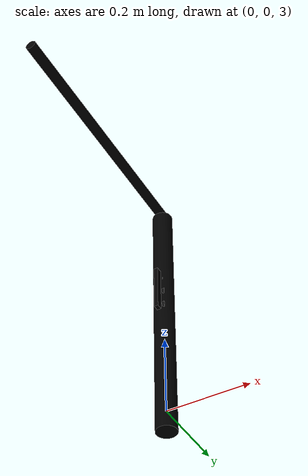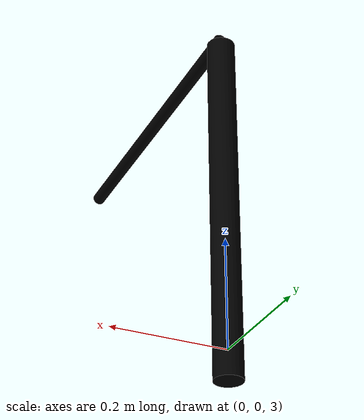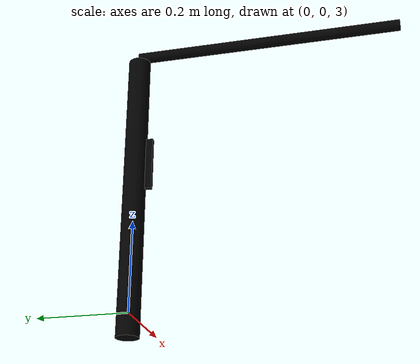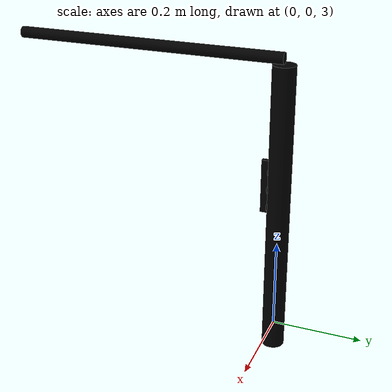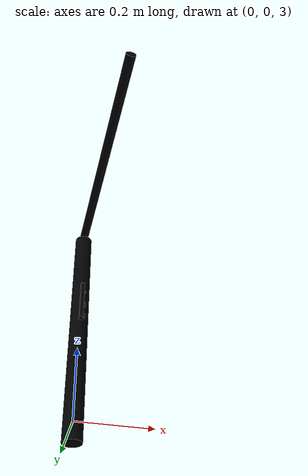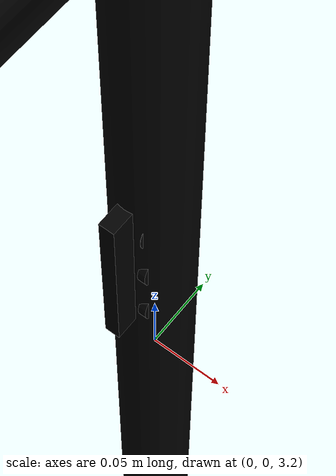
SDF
<?xml version="1.0"?>
<sdf version="1.7">
  <model name="cantilevered_light">
    <static>false</static>

    <link name="base">
      <gravity>false</gravity>
      <pose>0 0 0 0 0 0</pose>
      <visual name="visual">
        <pose>0 0 3.275 0 0 0</pose>
        <geometry>
          <cylinder>
            <radius>0.025</radius>
            <length>0.655</length>
          </cylinder>
        </geometry>
        <material>
          <ambient>0 0 0 1</ambient>
          <diffuse>0 0 0 1</diffuse>
          <specular>0 0 0 1</specular>
        </material>
      </visual>
      <collision name="collision">
        <pose>0 0 3.275 0 0 0</pose>
        <geometry>
          <cylinder>
            <radius>0.025</radius>
            <length>0.655</length>
          </cylinder>
        </geometry>
      </collision>
    </link>

    <link name="cross_beam">
      <gravity>false</gravity>
      <pose>0 2.7 3.615 1.5707 0 0</pose>
      <visual name="visual">
        <pose>0 0 3.0 0 0 0</pose>
        <geometry>
          <cylinder>
            <radius>0.0125</radius>
            <length>0.6</length>
          </cylinder>
        </geometry>
        <material>
          <ambient>0 0 0 1</ambient>
          <diffuse>0 0 0 1</diffuse>
          <specular>0 0 0 1</specular>
        </material>
      </visual>
      <collision name="collision">
        <pose>0 0 3.0 0 0 0</pose>
        <geometry>
          <cylinder>
            <radius>0.0125</radius>
            <length>0.6</length>
          </cylinder>
        </geometry>
      </collision>
    </link>

    <frame name="base_frame" attached_to="base">
    </frame>

    <frame name="cross_beam_frame">
      <pose relative_to="base_frame">0 2.7 3.615 1.5707 0 0</pose>
    </frame>

    <include>
      <name>traffic_light</name>
      <uri>model://gazebo_traffic_light</uri>
      <static>false</static>
      <pose relative_to="cross_beam_frame">0 -0.535 2.8 -1.5707 0 0</pose>
    </include>

    <joint name="cross_beam_fixed" type="fixed" >
      <parent>base</parent>
      <child>cross_beam</child>
    </joint>

    <joint name="light_mount" type="fixed" >
      <parent>cross_beam</parent>
      <child>traffic_light::light_fixture</child>
    </joint>
  </model>
</sdf>

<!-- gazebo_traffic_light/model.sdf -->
<sdf version="1.7">
  <model name="gazebo_traffic_light">
    <static>false</static>

    <link name="light_fixture">
      <kinematic>1</kinematic>
      <gravity>false</gravity>
      <pose>0 0 0.525 1.57 0 0</pose>
      <visual name="visual">
        <pose>0 0 0.535 0 0 0</pose>
        <geometry>
          <box>
            <size>0.01 0.06 0.12</size>
          </box>
        </geometry>
        <material>
          <ambient>0 0 0 1</ambient>
          <diffuse>0 0 0 1</diffuse>
          <specular>0 0 0 1</specular>
        </material>
      </visual>
      <collision name="collision">
        <pose>0 0 0.535 0 0 0</pose>
        <geometry>
          <box>
            <size>0.01 0.06 0.12</size>
          </box>
        </geometry>
      </collision>
    </link>

    <link name="left_off">
      <gravity>false</gravity>
      <kinematic>1</kinematic>
      <pose>0 -0.57 0.525 0 1.5707 0</pose>

      <visual name="visual">
        <geometry>
          <cylinder>
            <radius>0.015</radius>
            <length>0.005</length>
          </cylinder>
        </geometry>
        <material>
          <ambient>0 0 0 1</ambient>
          <diffuse>0 0 0 1</diffuse>
          <specular>0 0 0 1</specular>
          <emissive>1 0 0 1</emissive>
        </material>
      </visual>
    </link>

    <link name="left_on">
      <gravity>false</gravity>
      <kinematic>1</kinematic>
      <pose>0.01 -0.57 0.525 0 1.5707 0</pose>

      <visual name="visual">
        <geometry>
          <cylinder>
            <radius>0.015</radius>
            <length>0.0002</length>
          </cylinder>
        </geometry>
        <material>
          <ambient>0 0 0 1</ambient>
          <diffuse>0 0 0 1</diffuse>
          <specular>0 0 0 1</specular>
          <emissive>0 1 0 1</emissive>
        </material>
      </visual>
    </link>

    <link name="middle_off">
      <gravity>false</gravity>
      <kinematic>1</kinematic>
      <pose>0.01 -0.53125 0.525 0 1.5707 0</pose>

      <visual name="visual">
        <geometry>
          <cylinder>
            <radius>0.015</radius>
            <length>0.005</length>
          </cylinder>
        </geometry>
        <material>
          <ambient>0 0 0 1</ambient>
          <diffuse>0 0 0 1</diffuse>
          <specular>0 0 0 1</specular>
          <emissive>1 0 0 1</emissive>
        </material>
      </visual>
    </link>

    <link name="middle_on">
      <gravity>false</gravity>
      <kinematic>1</kinematic>
      <pose>0 -0.53125 0.525 0 1.5707 0</pose>

      <visual name="visual">
        <geometry>
          <cylinder>
            <radius>0.015</radius>
            <length>0.0002</length>
          </cylinder>
        </geometry>
        <material>
          <ambient>0 0 0 1</ambient>
          <diffuse>0 0 0 1</diffuse>
          <specular>0 0 0 1</specular>
          <emissive>0 1 0 1</emissive>
        </material>
      </visual>
    </link>

    <link name="right_off">
      <gravity>false</gravity>
      <kinematic>1</kinematic>
      <pose>0.01 -0.49 0.525 0 1.5707 0</pose>

      <visual name="visual">
        <geometry>
          <cylinder>
            <radius>0.015</radius>
            <length>0.005</length>
          </cylinder>
        </geometry>
        <material>
          <ambient>0 0 0 1</ambient>
          <diffuse>0 0 0 1</diffuse>
          <specular>0 0 0 1</specular>
          <emissive>1 0 0 1</emissive>
        </material>
      </visual>
    </link>

    <link name="right_on">
      <gravity>false</gravity>
      <kinematic>1</kinematic>
      <pose>0 -0.49 0.525 0 1.5707 0</pose>

      <visual name="visual">
        <geometry>
          <cylinder>
            <radius>0.015</radius>
            <length>0.0002</length>
          </cylinder>
        </geometry>
        <material>
          <ambient>0 0 0 1</ambient>
          <diffuse>0 0 0 1</diffuse>
          <specular>0 0 0 1</specular>
          <emissive>0 1 0 1</emissive>
        </material>
      </visual>
    </link>
    <joint name="left_base" type="fixed" >
      <parent>light_fixture</parent>
      <child>left_off</child>
      <child>left_on</child>
    </joint>
    <joint name="middle_base" type="fixed" >
      <parent>light_fixture</parent>
      <child>middle_off</child>
      <child>middle_on</child>
    </joint>
    <joint name="right_base" type="fixed" >
      <parent>light_fixture</parent>
      <child>right_off</child>
      <child>right_on</child>
    </joint>
  </model>
</sdf>
